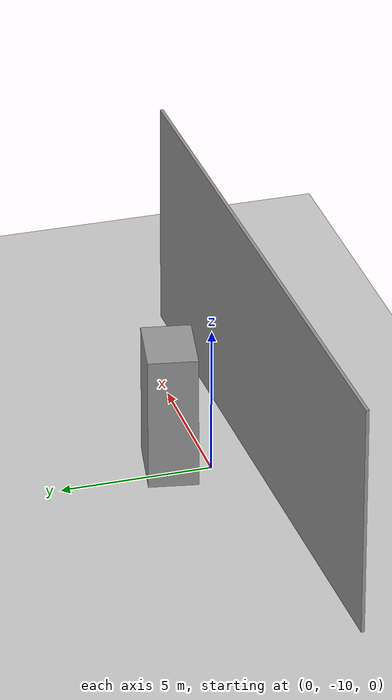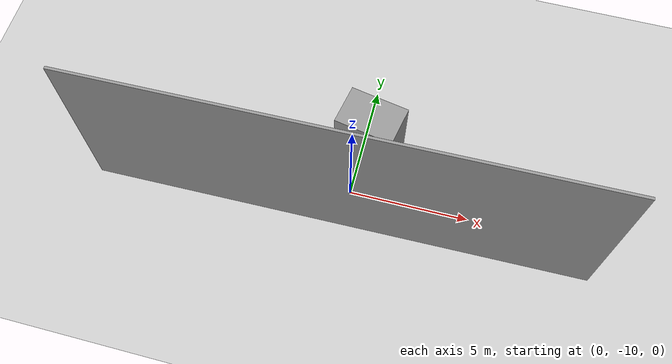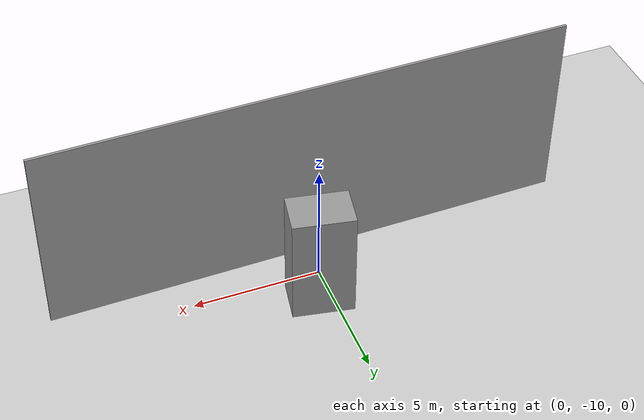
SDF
<sdf version="1.6">
 <world name="default">
  <model name="ground_plane">
   <static>1</static>
   <link name="link">
    <collision name="collision">
     <geometry><plane><normal>0 0 1</normal><size>100 100</size></plane></geometry>
     <surface>
      <contact><collide_bitmask>65535</collide_bitmask></contact>
      <friction><ode><mu>100</mu><mu2>50</mu2></ode></friction>
     </surface>
    </collision>
    <visual name="visual">
     <cast_shadows>0</cast_shadows>
     <geometry><plane><normal>0 0 1</normal><size>100 100</size></plane></geometry>
     <material>
      <script><uri>file://media/materials/scripts/gazebo.material</uri><name>Gazebo/Grey</name></script>
     </material>
    </visual>
   </link>
  </model>
  <model name="unit_box_clone">
   <pose>0.438758 -8.73704 2.2636 -0.001982 -1e-06 -0.184805</pose>
   <link name="link">
    <inertial>
     <mass>1</mass>
     <inertia>
      <ixx>0.166667</ixx>
      <ixy>0</ixy>
      <ixz>0</ixz>
      <iyy>0.166667</iyy>
      <iyz>0</iyz>
      <izz>0.166667</izz>
     </inertia>
    </inertial>
    <collision name="collision"><geometry><box><size>2.37028 1.6237 4.524</size></box></geometry></collision>
    <visual name="visual">
     <geometry><box><size>2.37028 1.6237 4.524</size></box></geometry>
     <material>
      <script><name>Gazebo/Grey</name><uri>file://media/materials/scripts/gazebo.material</uri></script>
     </material>
    </visual>
   </link>
  </model>
  <model name="wall_clone_clone">
   <link name="link">
    <inertial>
     <mass>1</mass>
     <inertia>
      <ixx>0.166667</ixx>
      <ixy>0</ixy>
      <ixz>0</ixz>
      <iyy>0.166667</iyy>
      <iyz>0</iyz>
      <izz>0.166667</izz>
     </inertia>
    </inertial>
    <visual name="visual">
     <geometry><box><size>20.7437 0.108573 7.82367</size></box></geometry>
     <material>
      <script><name>Gazebo/Grey</name><uri>file://media/materials/scripts/gazebo.material</uri></script>
     </material>
    </visual>
    <collision name="collision">
     <geometry><box><size>20.7437 0.108573 7.82367</size></box></geometry>
     <surface>
      <friction>
       <ode><mu>1</mu><mu2>1</mu2><fdir1>0 0 0</fdir1><slip1>0</slip1><slip2>0</slip2></ode>
       <torsional>
        <coefficient>1</coefficient>
        <patch_radius>0</patch_radius>
        <surface_radius>0</surface_radius>
        <use_patch_radius>1</use_patch_radius>
        <ode><slip>0</slip></ode>
       </torsional>
      </friction>
      <bounce><restitution_coefficient>0</restitution_coefficient><threshold>1e+06</threshold></bounce>
      <contact>
       <collide_without_contact>0</collide_without_contact>
       <collide_without_contact_bitmask>1</collide_without_contact_bitmask>
       <collide_bitmask>1</collide_bitmask>
       <ode>
        <soft_cfm>0</soft_cfm>
        <soft_erp>0.2</soft_erp>
        <kp>1e+13</kp>
        <kd>1</kd>
        <max_vel>0.01</max_vel>
        <min_depth>0</min_depth>
       </ode>
       <bullet>
        <split_impulse>1</split_impulse>
        <split_impulse_penetration_threshold>-0.01</split_impulse_penetration_threshold>
        <soft_cfm>0</soft_cfm>
        <soft_erp>0.2</soft_erp>
        <kp>1e+13</kp>
        <kd>1</kd>
       </bullet>
      </contact>
     </surface>
    </collision>
   </link>
   <static>1</static>
   <pose>-0.194657 -11.4691 3.86069 -0.001181 0.000467 -3.12533</pose>
  </model>
 </world>
</sdf>
